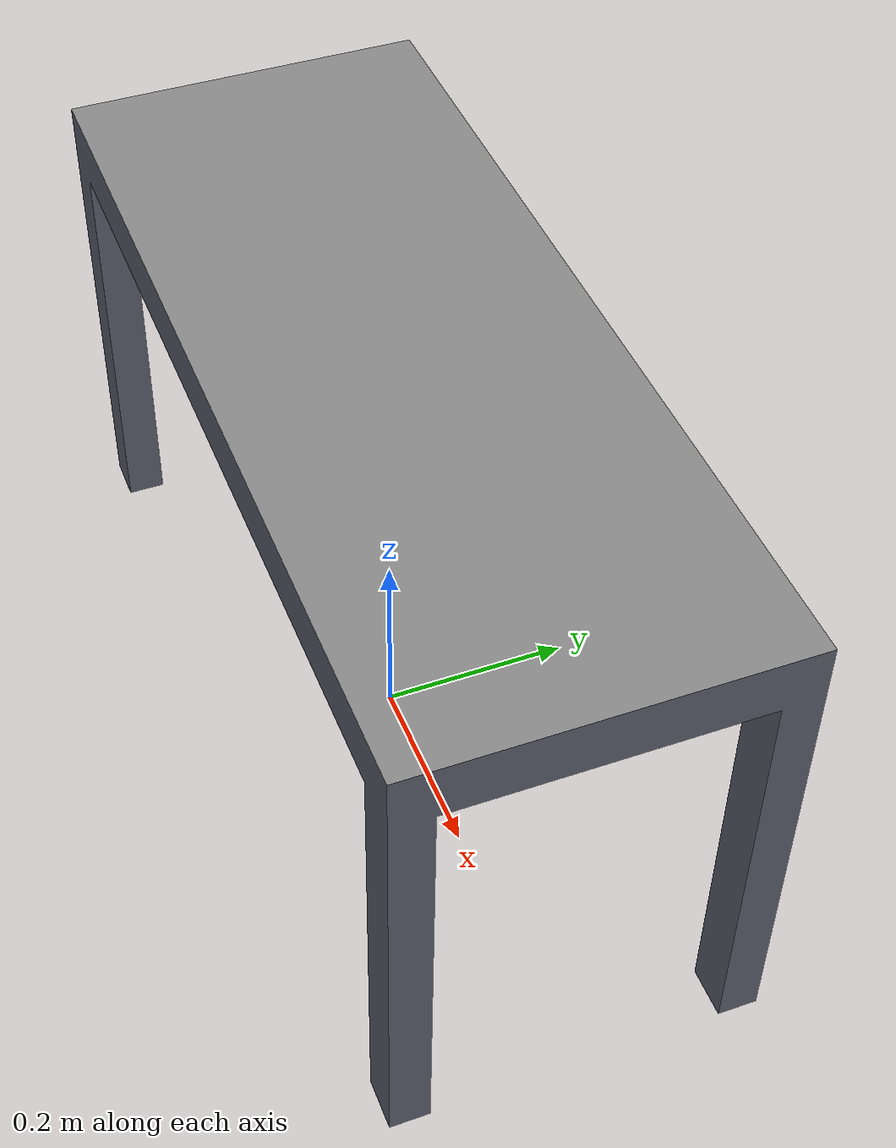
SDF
<?xml version='1.0'?>
<sdf version='1.6'>
  <model name='table_dining'>
    <link name='link_24'>
      <pose frame=''>0 0 0 0 -0 0</pose>
       <visual name='visual'>
        <pose frame=''>0 0 0 0 -0 0</pose>
        <geometry>
          <mesh>
            <uri>model://table_dining/meshes/table2.dae</uri>
            <scale>1 0.8 0.762</scale>
          </mesh>
        </geometry>
        <material>
          <script>
            <uri>model://table_dining/materials/scripts</uri>
            <uri>model://table_dining/materials/textures</uri>
            <name>dining_table</name>
          </script>
        </material>
        <cast_shadows>1</cast_shadows>
        <transparency>0</transparency>
      </visual>
      <collision name='collision'>
        <laser_retro>0</laser_retro>
        <max_contacts>10</max_contacts>
        <pose frame=''>0 0 0 0 -0 0</pose>
        <geometry>
          <mesh>
            <uri>model://table_dining/meshes/table2.dae</uri>
            <scale>1 0.8 0.762</scale>
          </mesh>
        </geometry>
       </collision>
    </link>
    <static>1</static>
    <allow_auto_disable>1</allow_auto_disable>
  </model>
</sdf>
